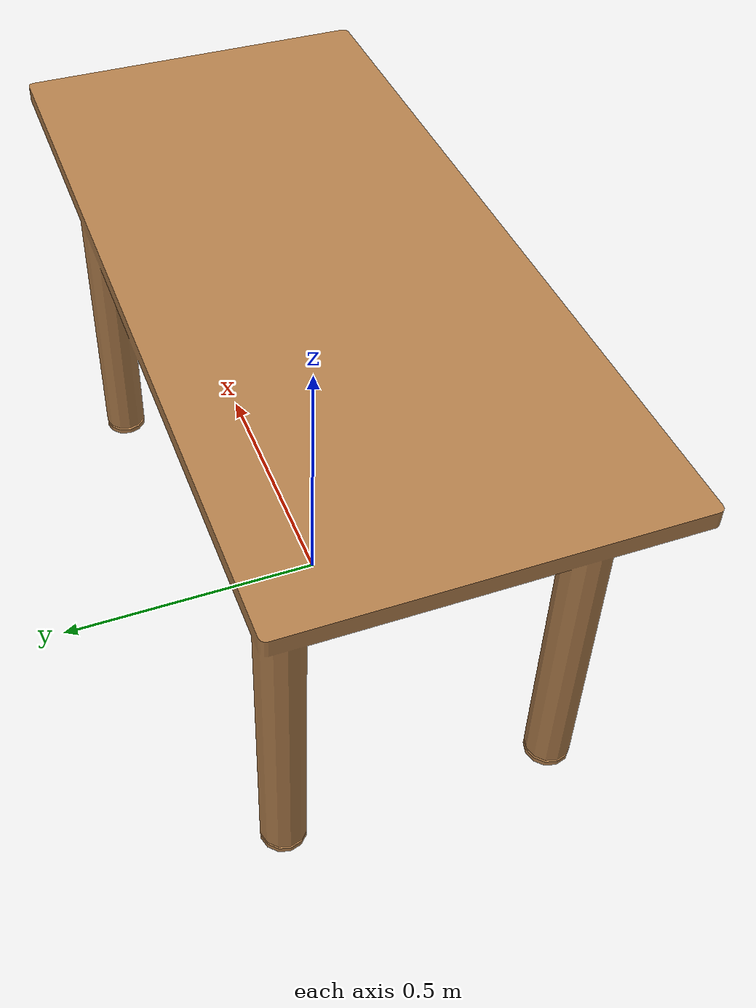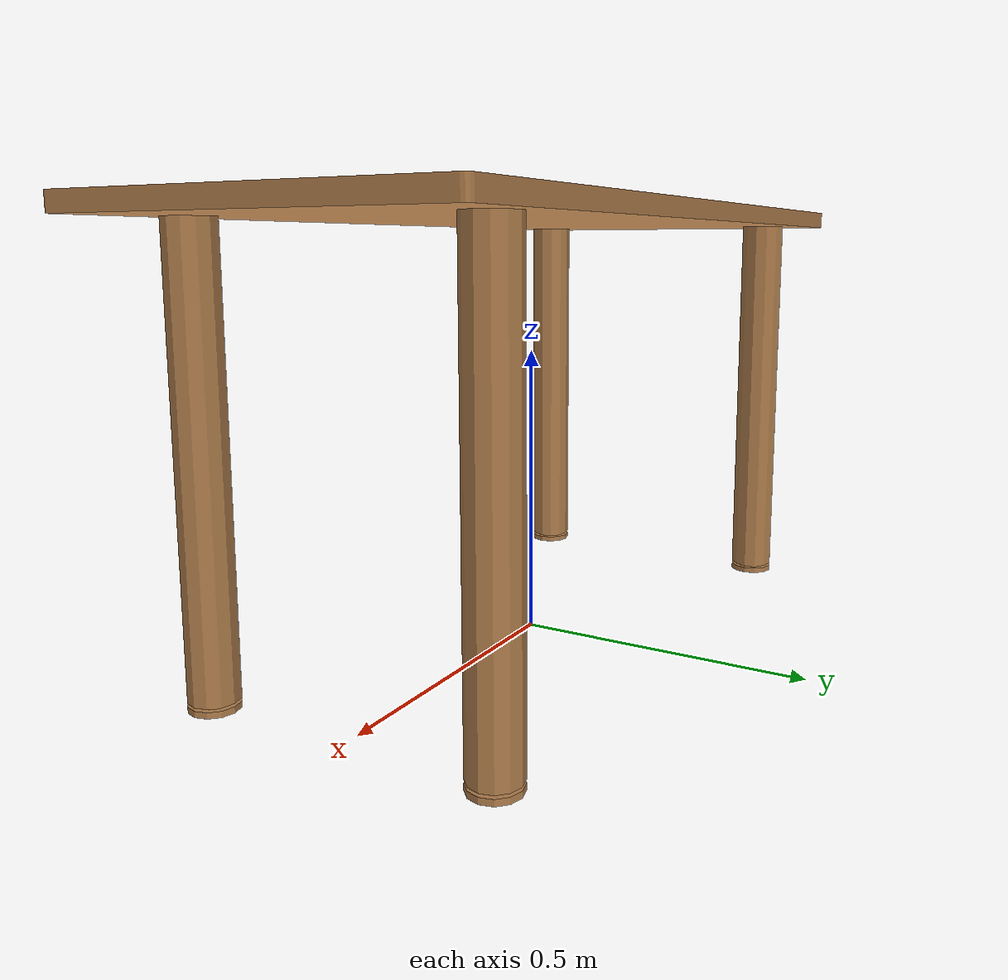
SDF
<sdf version='1.7'>
  <model name='Officedesk'>
    <link name='officedesk'>
      <inertial>
        <pose>0 0 0.60502 0 -0 0</pose>
        <mass>41.52</mass>
        <inertia>
          <ixx>3.7439</ixx>
          <ixy>9.5747e-15</ixy>
          <ixz>-3.0554e-15</ixz>
          <iyy>10.422</iyy>
          <iyz>-3.7668e-15</iyz>
          <izz>10.288</izz>
        </inertia>
      </inertial>
      <collision name='officedesk_collision'>
        <pose>0 0 0 0 -0 0</pose>
        <geometry>
          <mesh>
            <scale>1 1 1</scale>
            <uri>model://Officedesk/meshes/officedesk.STL</uri>
          </mesh>
        </geometry>
      </collision>
      <visual name='officedesk_visual'>
        <pose>0 0 0 0 -0 0</pose>
        <geometry>
          <mesh>
            <scale>1 1 1</scale>
            <uri>model://Officedesk/meshes/officedesk.STL</uri>
          </mesh>
        </geometry>
        <material>
          <script>
            <uri>file://media/materials/scripts/gazebo.material</uri>
            <name>Gazebo/Wood</name>
          </script>
        </material>
        </visual>
    </link>
  </model>
</sdf>
